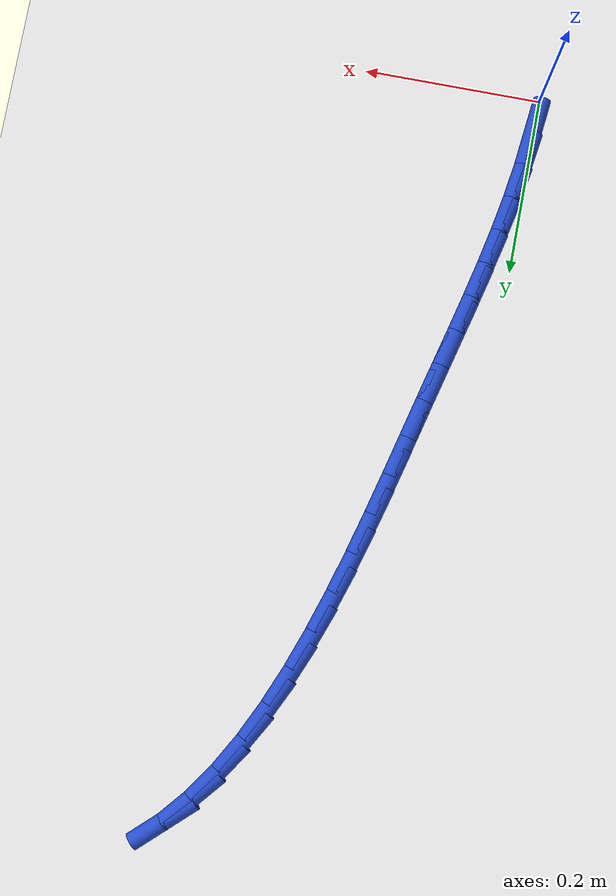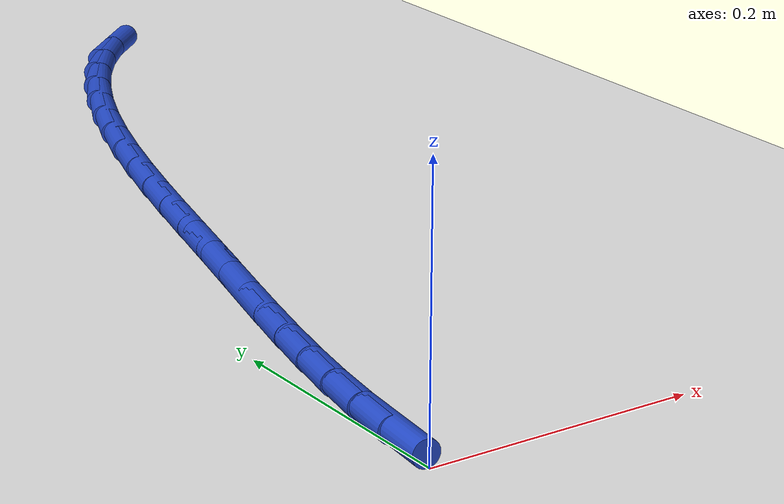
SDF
<sdf version="1.6">
 <world name="default">
  <model name="ground_plane">
   <static>1</static>
   <link name="link">
    <collision name="collision">
     <geometry><plane><normal>0 0 1</normal><size>100 100</size></plane></geometry>
     <surface><friction><ode><mu>100</mu><mu2>50</mu2></ode></friction></surface>
    </collision>
    <visual name="visual">
     <cast_shadows>0</cast_shadows>
     <geometry><plane><normal>0 0 1</normal><size>100 100</size></plane></geometry>
     <material>
      <script><uri>file://media/materials/scripts/gazebo.material</uri><name>Gazebo/WhiteGlow</name></script>
     </material>
    </visual>
   </link>
  </model>
  <model name="line">
   <link name="link_1">
    <pose>0.002307290803707648 0.0402730832526608 0.01 0 1.57 1.4660855892356623</pose>
    <collision name="collision">
     <geometry><cylinder><radius>0.01</radius><length>0.08</length></cylinder></geometry>
    </collision>
    <visual name="visual">
     <material>
      <script><name>Gazebo/Blue</name><uri>file://media/materials/scripts/gazebo.material</uri></script>
     </material>
     <geometry><cylinder><radius>0.01</radius><length>0.08</length></cylinder></geometry>
    </visual>
   </link>
   <link name="link_2">
    <pose>0.006499379447455706 0.08016160252571507 0.01 0 1.57 1.4247472507209018</pose>
    <collision name="collision">
     <geometry><cylinder><radius>0.01</radius><length>0.08</length></cylinder></geometry>
    </collision>
    <visual name="visual">
     <material>
      <script><name>Gazebo/Blue</name><uri>file://media/materials/scripts/gazebo.material</uri></script>
     </material>
     <geometry><cylinder><radius>0.01</radius><length>0.08</length></cylinder></geometry>
    </visual>
   </link>
   <link name="link_3">
    <pose>0.012342893499791058 0.11988733700476178 0.01 0 1.57 1.3902621324792257</pose>
    <collision name="collision">
     <geometry><cylinder><radius>0.01</radius><length>0.08</length></cylinder></geometry>
    </collision>
    <visual name="visual">
     <material>
      <script><name>Gazebo/Blue</name><uri>file://media/materials/scripts/gazebo.material</uri></script>
     </material>
     <geometry><cylinder><radius>0.01</radius><length>0.08</length></cylinder></geometry>
    </visual>
   </link>
   <link name="link_4">
    <pose>0.01960446052926059 0.15967206587540023 0.01 0 1.57 1.3630275392520297</pose>
    <collision name="collision">
     <geometry><cylinder><radius>0.01</radius><length>0.08</length></cylinder></geometry>
    </collision>
    <visual name="visual">
     <material>
      <script><name>Gazebo/Blue</name><uri>file://media/materials/scripts/gazebo.material</uri></script>
     </material>
     <geometry><cylinder><radius>0.01</radius><length>0.08</length></cylinder></geometry>
    </visual>
   </link>
   <link name="link_5">
    <pose>0.028050708104411192 0.19973756832322942 0.01 0 1.57 1.343162206761205</pose>
    <collision name="collision">
     <geometry><cylinder><radius>0.01</radius><length>0.08</length></cylinder></geometry>
    </collision>
    <visual name="visual">
     <material>
      <script><name>Gazebo/Blue</name><uri>file://media/materials/scripts/gazebo.material</uri></script>
     </material>
     <geometry><cylinder><radius>0.01</radius><length>0.08</length></cylinder></geometry>
    </visual>
   </link>
   <link name="link_6">
    <pose>0.037448263793789724 0.24030562353384852 0.01 0 1.57 1.3305551783907523</pose>
    <collision name="collision">
     <geometry><cylinder><radius>0.01</radius><length>0.08</length></cylinder></geometry>
    </collision>
    <visual name="visual">
     <material>
      <script><name>Gazebo/Blue</name><uri>file://media/materials/scripts/gazebo.material</uri></script>
     </material>
     <geometry><cylinder><radius>0.01</radius><length>0.08</length></cylinder></geometry>
    </visual>
   </link>
   <link name="link_7">
    <pose>0.0475637551659431 0.2815980106928566 0.01 0 1.57 1.3249169869127073</pose>
    <collision name="collision">
     <geometry><cylinder><radius>0.01</radius><length>0.08</length></cylinder></geometry>
    </collision>
    <visual name="visual">
     <material>
      <script><name>Gazebo/Blue</name><uri>file://media/materials/scripts/gazebo.material</uri></script>
     </material>
     <geometry><cylinder><radius>0.01</radius><length>0.08</length></cylinder></geometry>
    </visual>
   </link>
   <link name="link_8">
    <pose>0.05816380978941818 0.32383650898585287 0.01 0 1.57 1.3258197710168826</pose>
    <collision name="collision">
     <geometry><cylinder><radius>0.01</radius><length>0.08</length></cylinder></geometry>
    </collision>
    <visual name="visual">
     <material>
      <script><name>Gazebo/Blue</name><uri>file://media/materials/scripts/gazebo.material</uri></script>
     </material>
     <geometry><cylinder><radius>0.01</radius><length>0.08</length></cylinder></geometry>
    </visual>
   </link>
   <link name="link_9">
    <pose>0.06901523895840993 0.3672426144167921 0.01 0 1.57 1.329685726547178</pose>
    <collision name="collision">
     <geometry><cylinder><radius>0.01</radius><length>0.08</length></cylinder></geometry>
    </collision>
    <visual name="visual">
     <material>
      <script><name>Gazebo/Blue</name><uri>file://media/materials/scripts/gazebo.material</uri></script>
     </material>
     <geometry><cylinder><radius>0.01</radius><length>0.08</length></cylinder></geometry>
    </visual>
   </link>
   <link name="link_10">
    <pose>0.07999019376428974 0.4118754597198531 0.01 0 1.57 1.328282268665395</pose>
    <collision name="collision">
     <geometry><cylinder><radius>0.01</radius><length>0.08</length></cylinder></geometry>
    </collision>
    <visual name="visual">
     <material>
      <script><name>Gazebo/Blue</name><uri>file://media/materials/scripts/gazebo.material</uri></script>
     </material>
     <geometry><cylinder><radius>0.01</radius><length>0.08</length></cylinder></geometry>
    </visual>
   </link>
   <link name="link_11">
    <pose>0.09124235533844573 0.4573602472528266 0.01 0 1.57 1.3205532288843826</pose>
    <collision name="collision">
     <geometry><cylinder><radius>0.01</radius><length>0.08</length></cylinder></geometry>
    </collision>
    <visual name="visual">
     <material>
      <script><name>Gazebo/Blue</name><uri>file://media/materials/scripts/gazebo.material</uri></script>
     </material>
     <geometry><cylinder><radius>0.01</radius><length>0.08</length></cylinder></geometry>
    </visual>
   </link>
   <link name="link_12">
    <pose>0.10297193471429295 0.5032504614925318 0.01 0 1.57 1.306516507150438</pose>
    <collision name="collision">
     <geometry><cylinder><radius>0.01</radius><length>0.08</length></cylinder></geometry>
    </collision>
    <visual name="visual">
     <material>
      <script><name>Gazebo/Blue</name><uri>file://media/materials/scripts/gazebo.material</uri></script>
     </material>
     <geometry><cylinder><radius>0.01</radius><length>0.08</length></cylinder></geometry>
    </visual>
   </link>
   <link name="link_13">
    <pose>0.11537914292524641 0.5490995869157881 0.01 0 1.57 1.2858931907505875</pose>
    <collision name="collision">
     <geometry><cylinder><radius>0.01</radius><length>0.08</length></cylinder></geometry>
    </collision>
    <visual name="visual">
     <material>
      <script><name>Gazebo/Blue</name><uri>file://media/materials/scripts/gazebo.material</uri></script>
     </material>
     <geometry><cylinder><radius>0.01</radius><length>0.08</length></cylinder></geometry>
    </visual>
   </link>
   <link name="link_14">
    <pose>0.12866419100472115 0.5944611079994147 0.01 0 1.57 1.258108489723615</pose>
    <collision name="collision">
     <geometry><cylinder><radius>0.01</radius><length>0.08</length></cylinder></geometry>
    </collision>
    <visual name="visual">
     <material>
      <script><name>Gazebo/Blue</name><uri>file://media/materials/scripts/gazebo.material</uri></script>
     </material>
     <geometry><cylinder><radius>0.01</radius><length>0.08</length></cylinder></geometry>
    </visual>
   </link>
   <link name="link_15">
    <pose>0.1430272899861322 0.6388885092202309 0.01 0 1.57 1.2222717291295155</pose>
    <collision name="collision">
     <geometry><cylinder><radius>0.01</radius><length>0.08</length></cylinder></geometry>
    </collision>
    <visual name="visual">
     <material>
      <script><name>Gazebo/Blue</name><uri>file://media/materials/scripts/gazebo.material</uri></script>
     </material>
     <geometry><cylinder><radius>0.01</radius><length>0.08</length></cylinder></geometry>
    </visual>
   </link>
   <link name="link_16">
    <pose>0.15866865090289464 0.6819352750550561 0.01 0 1.57 1.1771427948496973</pose>
    <collision name="collision">
     <geometry><cylinder><radius>0.01</radius><length>0.08</length></cylinder></geometry>
    </collision>
    <visual name="visual">
     <material>
      <script><name>Gazebo/Blue</name><uri>file://media/materials/scripts/gazebo.material</uri></script>
     </material>
     <geometry><cylinder><radius>0.01</radius><length>0.08</length></cylinder></geometry>
    </visual>
   </link>
   <link name="link_17">
    <pose>0.17578848478842352 0.7231548899807095 0.01 0 1.57 1.1210986550106237</pose>
    <collision name="collision">
     <geometry><cylinder><radius>0.01</radius><length>0.08</length></cylinder></geometry>
    </collision>
    <visual name="visual">
     <material>
      <script><name>Gazebo/Blue</name><uri>file://media/materials/scripts/gazebo.material</uri></script>
     </material>
     <geometry><cylinder><radius>0.01</radius><length>0.08</length></cylinder></geometry>
    </visual>
   </link>
   <link name="link_18">
    <pose>0.1945870026761337 0.7621008384740104 0.01 0 1.57 1.0521294883734549</pose>
    <collision name="collision">
     <geometry><cylinder><radius>0.01</radius><length>0.08</length></cylinder></geometry>
    </collision>
    <visual name="visual">
     <material>
      <script><name>Gazebo/Blue</name><uri>file://media/materials/scripts/gazebo.material</uri></script>
     </material>
     <geometry><cylinder><radius>0.01</radius><length>0.08</length></cylinder></geometry>
    </visual>
   </link>
   <link name="link_19">
    <pose>0.21526441559944043 0.7983266050117783 0.01 0 1.57 0.9679256834273765</pose>
    <collision name="collision">
     <geometry><cylinder><radius>0.01</radius><length>0.08</length></cylinder></geometry>
    </collision>
    <visual name="visual">
     <material>
      <script><name>Gazebo/Blue</name><uri>file://media/materials/scripts/gazebo.material</uri></script>
     </material>
     <geometry><cylinder><radius>0.01</radius><length>0.08</length></cylinder></geometry>
    </visual>
   </link>
   <link name="link_20">
    <pose>0.23802093459175883 0.8313856740708325 0.01 0 1.57 0.8661670576618331</pose>
    <collision name="collision">
     <geometry><cylinder><radius>0.01</radius><length>0.08</length></cylinder></geometry>
    </collision>
    <visual name="visual">
     <material>
      <script><name>Gazebo/Blue</name><uri>file://media/materials/scripts/gazebo.material</uri></script>
     </material>
     <geometry><cylinder><radius>0.01</radius><length>0.08</length></cylinder></geometry>
    </visual>
   </link>
   <link name="link_21">
    <pose>0.26305677068650357 0.8608315301279919 0.01 0 1.57 0.7451707905215994</pose>
    <collision name="collision">
     <geometry><cylinder><radius>0.01</radius><length>0.08</length></cylinder></geometry>
    </collision>
    <visual name="visual">
     <material>
      <script><name>Gazebo/Blue</name><uri>file://media/materials/scripts/gazebo.material</uri></script>
     </material>
     <geometry><cylinder><radius>0.01</radius><length>0.08</length></cylinder></geometry>
    </visual>
   </link>
  </model>
 </world>
</sdf>
